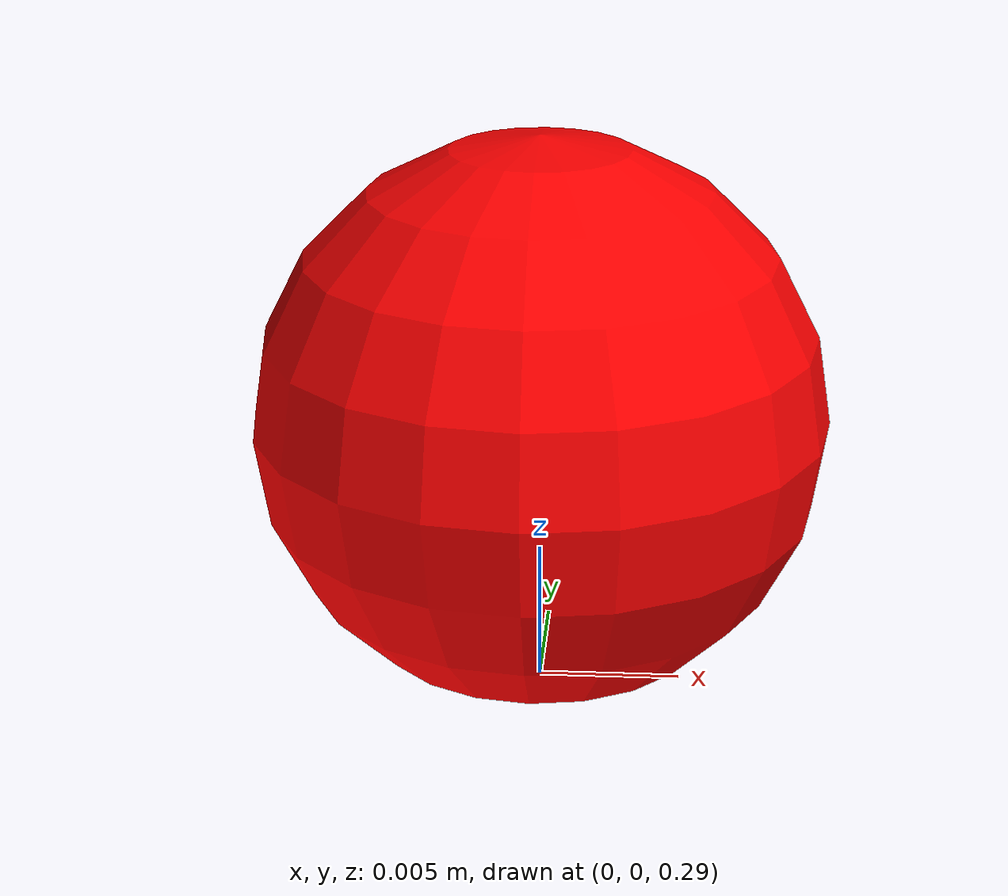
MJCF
<mujoco>
    <asset>
        <texture name="grid" type="2d" builtin="checker"
            rgb1="0.2 0.3 0.4" rgb2="0.3 0.4 0.5" width="300" height="300"/>
        <!-- 등호, 띄어쓰기, texrepeat 오타 수정 -->
        <material name="grid" texture="grid" texrepeat="6 6"/>
    </asset> <!-- asset 닫는 태그 추가 -->

    <worldbody>
        <geom type="plane" size="1 1 0.1" material="grid"/>
        <body pos="0 0 0.3">
            <freejoint/>
            <geom type="sphere" size="0.01" rgba="1 0 0 1"/>
        </body>
    </worldbody>
</mujoco>
